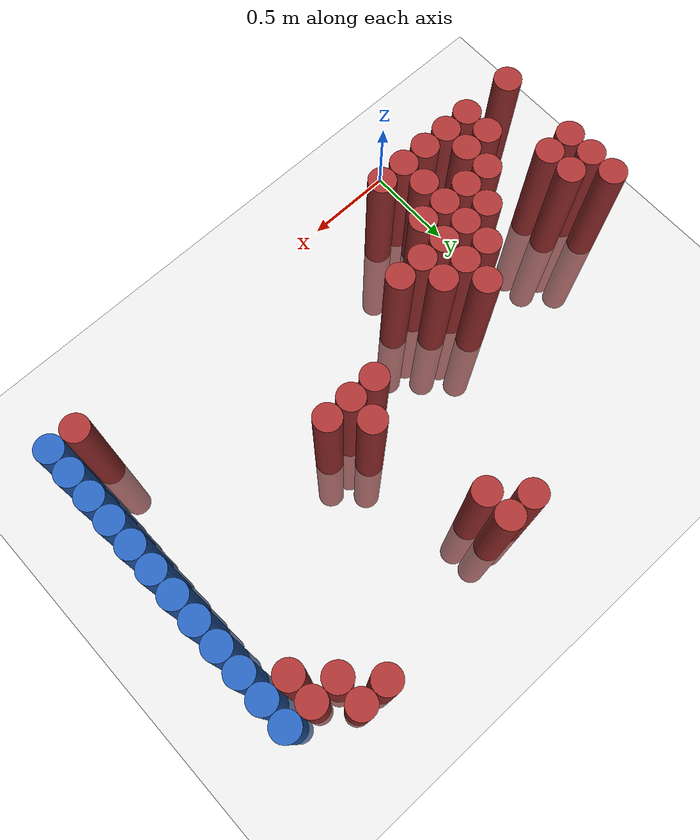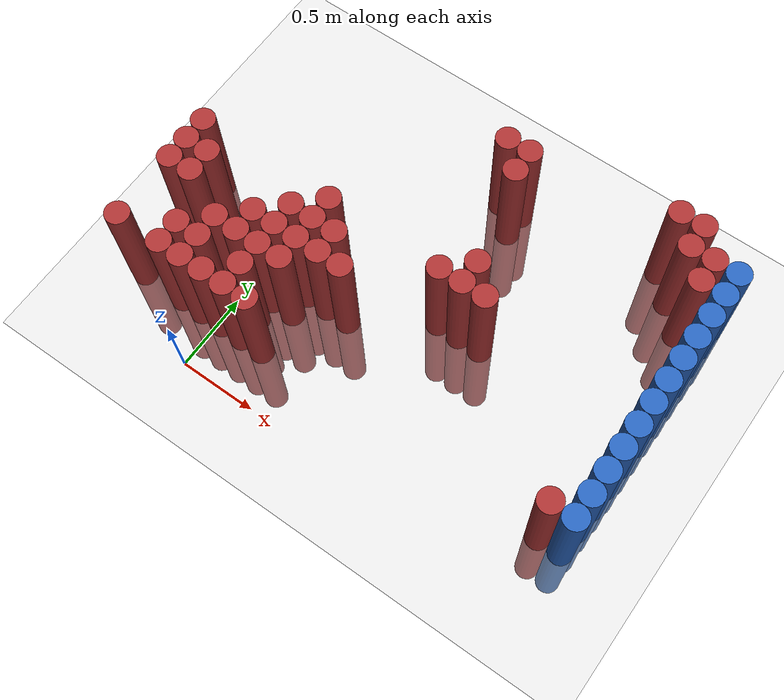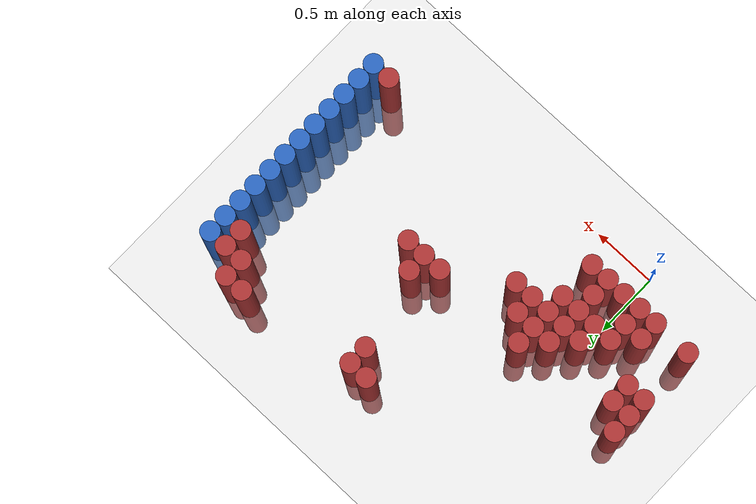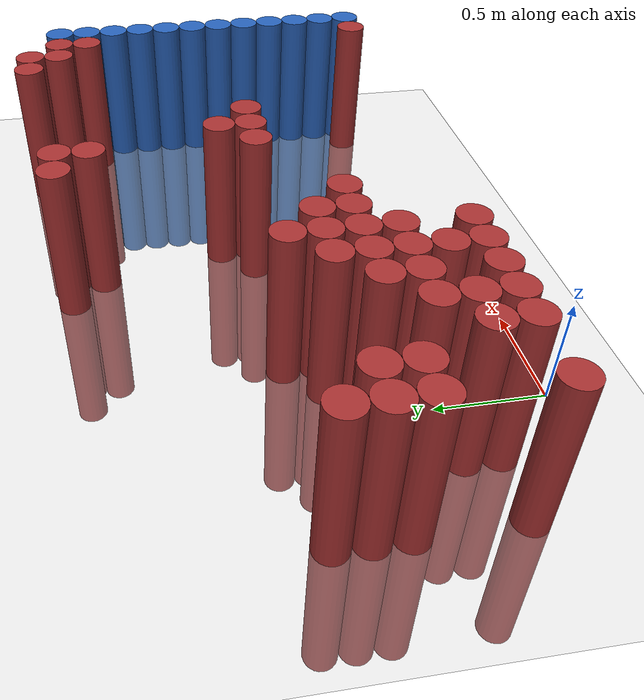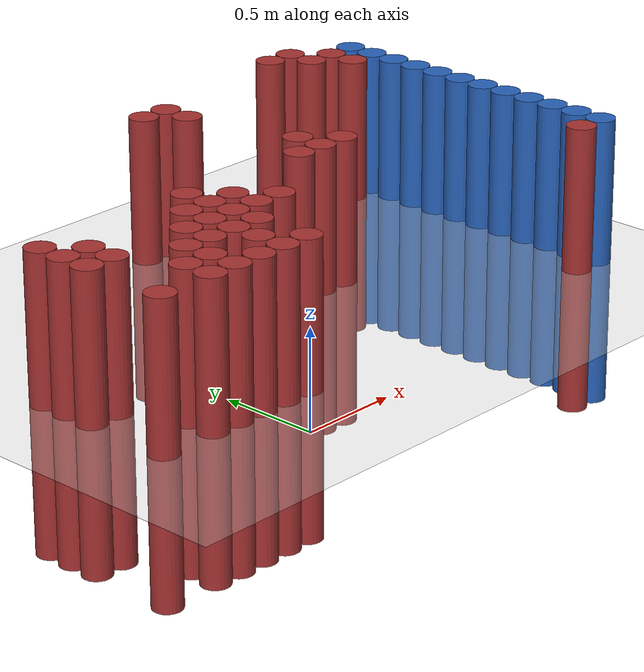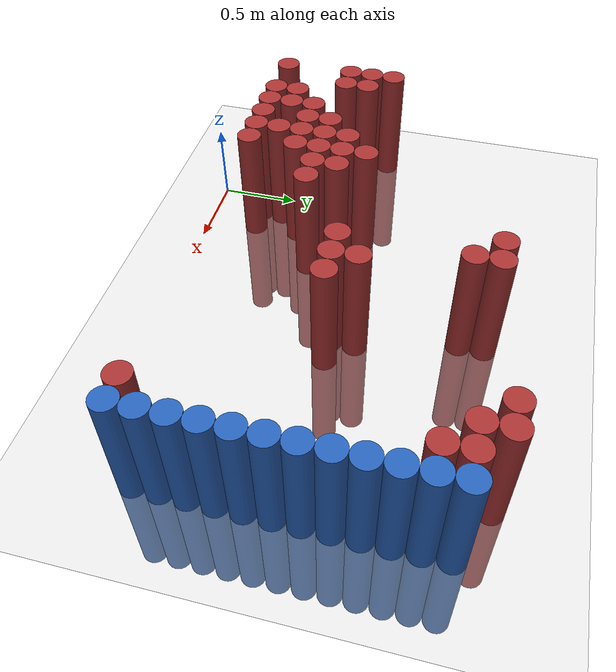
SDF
<sdf version="1.6">
 <world name="default">
  <model name="ground_plane">
   <static>1</static>
   <link name="link">
    <collision name="collision">
     <geometry><plane><normal>0 0 1</normal><size>100 100</size></plane></geometry>
     <surface><friction><ode><mu>100</mu><mu2>50</mu2></ode></friction></surface>
    </collision>
    <visual name="visual">
     <cast_shadows>0</cast_shadows>
     <geometry><plane><normal>0 0 1</normal><size>100 100</size></plane></geometry>
     <material>
      <script><uri>file://media/materials/scripts/gazebo.material</uri><name>Gazebo/Grey</name></script>
     </material>
    </visual>
   </link>
  </model>
  <model name="unit_cylinder_153">
   <static>1</static>
   <pose>-0.575000 0.325000 0.000000 0.000000 0.000000 0.000000</pose>
   <link name="link">
    <inertial>
     <mass>1</mass>
     <inertia><ixx>0.145833</ixx><ixy>0</ixy><ixz>0</ixz><iyy>0.145833</iyy><iyz>0</iyz><izz>0.125</izz></inertia>
    </inertial>
    <collision name="collision">
     <geometry><cylinder><radius>0.075000</radius><length>1.5</length></cylinder></geometry>
    </collision>
    <visual name="visual">
     <geometry><cylinder><radius>0.075000</radius><length>1.5</length></cylinder></geometry>
     <material>
      <ambient>0.648000 0.192000 0.192000 1</ambient>
      <diffuse>0.648000 0.192000 0.192000 1</diffuse>
     </material>
     <material>
      <script><name>Gazebo/Grey</name><uri>file://media/materials/scripts/gazebo.material</uri></script>
     </material>
    </visual>
   </link>
  </model>
  <model name="unit_cylinder_154">
   <static>1</static>
   <pose>-0.575000 0.775000 0.000000 0.000000 0.000000 0.000000</pose>
   <link name="link">
    <inertial>
     <mass>1</mass>
     <inertia><ixx>0.145833</ixx><ixy>0</ixy><ixz>0</ixz><iyy>0.145833</iyy><iyz>0</iyz><izz>0.125</izz></inertia>
    </inertial>
    <collision name="collision">
     <geometry><cylinder><radius>0.075000</radius><length>1.5</length></cylinder></geometry>
    </collision>
    <visual name="visual">
     <geometry><cylinder><radius>0.075000</radius><length>1.5</length></cylinder></geometry>
     <material>
      <ambient>0.648000 0.192000 0.192000 1</ambient>
      <diffuse>0.648000 0.192000 0.192000 1</diffuse>
     </material>
     <material>
      <script><name>Gazebo/Grey</name><uri>file://media/materials/scripts/gazebo.material</uri></script>
     </material>
    </visual>
   </link>
  </model>
  <model name="unit_cylinder_155">
   <static>1</static>
   <pose>-0.575000 0.925000 0.000000 0.000000 0.000000 0.000000</pose>
   <link name="link">
    <inertial>
     <mass>1</mass>
     <inertia><ixx>0.145833</ixx><ixy>0</ixy><ixz>0</ixz><iyy>0.145833</iyy><iyz>0</iyz><izz>0.125</izz></inertia>
    </inertial>
    <collision name="collision">
     <geometry><cylinder><radius>0.075000</radius><length>1.5</length></cylinder></geometry>
    </collision>
    <visual name="visual">
     <geometry><cylinder><radius>0.075000</radius><length>1.5</length></cylinder></geometry>
     <material>
      <ambient>0.648000 0.192000 0.192000 1</ambient>
      <diffuse>0.648000 0.192000 0.192000 1</diffuse>
     </material>
     <material>
      <script><name>Gazebo/Grey</name><uri>file://media/materials/scripts/gazebo.material</uri></script>
     </material>
    </visual>
   </link>
  </model>
  <model name="unit_cylinder_156">
   <static>1</static>
   <pose>-0.575000 1.075000 0.000000 0.000000 0.000000 0.000000</pose>
   <link name="link">
    <inertial>
     <mass>1</mass>
     <inertia><ixx>0.145833</ixx><ixy>0</ixy><ixz>0</ixz><iyy>0.145833</iyy><iyz>0</iyz><izz>0.125</izz></inertia>
    </inertial>
    <collision name="collision">
     <geometry><cylinder><radius>0.075000</radius><length>1.5</length></cylinder></geometry>
    </collision>
    <visual name="visual">
     <geometry><cylinder><radius>0.075000</radius><length>1.5</length></cylinder></geometry>
     <material>
      <ambient>0.648000 0.192000 0.192000 1</ambient>
      <diffuse>0.648000 0.192000 0.192000 1</diffuse>
     </material>
     <material>
      <script><name>Gazebo/Grey</name><uri>file://media/materials/scripts/gazebo.material</uri></script>
     </material>
    </visual>
   </link>
  </model>
  <model name="unit_cylinder_163">
   <static>1</static>
   <pose>-0.425000 0.775000 0.000000 0.000000 0.000000 0.000000</pose>
   <link name="link">
    <inertial>
     <mass>1</mass>
     <inertia><ixx>0.145833</ixx><ixy>0</ixy><ixz>0</ixz><iyy>0.145833</iyy><iyz>0</iyz><izz>0.125</izz></inertia>
    </inertial>
    <collision name="collision">
     <geometry><cylinder><radius>0.075000</radius><length>1.5</length></cylinder></geometry>
    </collision>
    <visual name="visual">
     <geometry><cylinder><radius>0.075000</radius><length>1.5</length></cylinder></geometry>
     <material>
      <ambient>0.648000 0.192000 0.192000 1</ambient>
      <diffuse>0.648000 0.192000 0.192000 1</diffuse>
     </material>
     <material>
      <script><name>Gazebo/Grey</name><uri>file://media/materials/scripts/gazebo.material</uri></script>
     </material>
    </visual>
   </link>
  </model>
  <model name="unit_cylinder_164">
   <static>1</static>
   <pose>-0.425000 0.925000 0.000000 0.000000 0.000000 0.000000</pose>
   <link name="link">
    <inertial>
     <mass>1</mass>
     <inertia><ixx>0.145833</ixx><ixy>0</ixy><ixz>0</ixz><iyy>0.145833</iyy><iyz>0</iyz><izz>0.125</izz></inertia>
    </inertial>
    <collision name="collision">
     <geometry><cylinder><radius>0.075000</radius><length>1.5</length></cylinder></geometry>
    </collision>
    <visual name="visual">
     <geometry><cylinder><radius>0.075000</radius><length>1.5</length></cylinder></geometry>
     <material>
      <ambient>0.648000 0.192000 0.192000 1</ambient>
      <diffuse>0.648000 0.192000 0.192000 1</diffuse>
     </material>
     <material>
      <script><name>Gazebo/Grey</name><uri>file://media/materials/scripts/gazebo.material</uri></script>
     </material>
    </visual>
   </link>
  </model>
  <model name="unit_cylinder_169">
   <static>1</static>
   <pose>-0.275000 0.325000 0.000000 0.000000 0.000000 0.000000</pose>
   <link name="link">
    <inertial>
     <mass>1</mass>
     <inertia><ixx>0.145833</ixx><ixy>0</ixy><ixz>0</ixz><iyy>0.145833</iyy><iyz>0</iyz><izz>0.125</izz></inertia>
    </inertial>
    <collision name="collision">
     <geometry><cylinder><radius>0.075000</radius><length>1.5</length></cylinder></geometry>
    </collision>
    <visual name="visual">
     <geometry><cylinder><radius>0.075000</radius><length>1.5</length></cylinder></geometry>
     <material>
      <ambient>0.648000 0.192000 0.192000 1</ambient>
      <diffuse>0.648000 0.192000 0.192000 1</diffuse>
     </material>
     <material>
      <script><name>Gazebo/Grey</name><uri>file://media/materials/scripts/gazebo.material</uri></script>
     </material>
    </visual>
   </link>
  </model>
  <model name="unit_cylinder_170">
   <static>1</static>
   <pose>-0.275000 0.475000 0.000000 0.000000 0.000000 0.000000</pose>
   <link name="link">
    <inertial>
     <mass>1</mass>
     <inertia><ixx>0.145833</ixx><ixy>0</ixy><ixz>0</ixz><iyy>0.145833</iyy><iyz>0</iyz><izz>0.125</izz></inertia>
    </inertial>
    <collision name="collision">
     <geometry><cylinder><radius>0.075000</radius><length>1.5</length></cylinder></geometry>
    </collision>
    <visual name="visual">
     <geometry><cylinder><radius>0.075000</radius><length>1.5</length></cylinder></geometry>
     <material>
      <ambient>0.648000 0.192000 0.192000 1</ambient>
      <diffuse>0.648000 0.192000 0.192000 1</diffuse>
     </material>
     <material>
      <script><name>Gazebo/Grey</name><uri>file://media/materials/scripts/gazebo.material</uri></script>
     </material>
    </visual>
   </link>
  </model>
  <model name="unit_cylinder_174">
   <static>1</static>
   <pose>-0.125000 0.325000 0.000000 0.000000 0.000000 0.000000</pose>
   <link name="link">
    <inertial>
     <mass>1</mass>
     <inertia><ixx>0.145833</ixx><ixy>0</ixy><ixz>0</ixz><iyy>0.145833</iyy><iyz>0</iyz><izz>0.125</izz></inertia>
    </inertial>
    <collision name="collision">
     <geometry><cylinder><radius>0.075000</radius><length>1.5</length></cylinder></geometry>
    </collision>
    <visual name="visual">
     <geometry><cylinder><radius>0.075000</radius><length>1.5</length></cylinder></geometry>
     <material>
      <ambient>0.648000 0.192000 0.192000 1</ambient>
      <diffuse>0.648000 0.192000 0.192000 1</diffuse>
     </material>
     <material>
      <script><name>Gazebo/Grey</name><uri>file://media/materials/scripts/gazebo.material</uri></script>
     </material>
    </visual>
   </link>
  </model>
  <model name="unit_cylinder_175">
   <static>1</static>
   <pose>-0.125000 0.475000 0.000000 0.000000 0.000000 0.000000</pose>
   <link name="link">
    <inertial>
     <mass>1</mass>
     <inertia><ixx>0.145833</ixx><ixy>0</ixy><ixz>0</ixz><iyy>0.145833</iyy><iyz>0</iyz><izz>0.125</izz></inertia>
    </inertial>
    <collision name="collision">
     <geometry><cylinder><radius>0.075000</radius><length>1.5</length></cylinder></geometry>
    </collision>
    <visual name="visual">
     <geometry><cylinder><radius>0.075000</radius><length>1.5</length></cylinder></geometry>
     <material>
      <ambient>0.648000 0.192000 0.192000 1</ambient>
      <diffuse>0.648000 0.192000 0.192000 1</diffuse>
     </material>
     <material>
      <script><name>Gazebo/Grey</name><uri>file://media/materials/scripts/gazebo.material</uri></script>
     </material>
    </visual>
   </link>
  </model>
  <model name="unit_cylinder_176">
   <static>1</static>
   <pose>-0.125000 0.625000 0.000000 0.000000 0.000000 0.000000</pose>
   <link name="link">
    <inertial>
     <mass>1</mass>
     <inertia><ixx>0.145833</ixx><ixy>0</ixy><ixz>0</ixz><iyy>0.145833</iyy><iyz>0</iyz><izz>0.125</izz></inertia>
    </inertial>
    <collision name="collision">
     <geometry><cylinder><radius>0.075000</radius><length>1.5</length></cylinder></geometry>
    </collision>
    <visual name="visual">
     <geometry><cylinder><radius>0.075000</radius><length>1.5</length></cylinder></geometry>
     <material>
      <ambient>0.648000 0.192000 0.192000 1</ambient>
      <diffuse>0.648000 0.192000 0.192000 1</diffuse>
     </material>
     <material>
      <script><name>Gazebo/Grey</name><uri>file://media/materials/scripts/gazebo.material</uri></script>
     </material>
    </visual>
   </link>
  </model>
  <model name="unit_cylinder_179">
   <static>1</static>
   <pose>0.025000 0.325000 0.000000 0.000000 0.000000 0.000000</pose>
   <link name="link">
    <inertial>
     <mass>1</mass>
     <inertia><ixx>0.145833</ixx><ixy>0</ixy><ixz>0</ixz><iyy>0.145833</iyy><iyz>0</iyz><izz>0.125</izz></inertia>
    </inertial>
    <collision name="collision">
     <geometry><cylinder><radius>0.075000</radius><length>1.5</length></cylinder></geometry>
    </collision>
    <visual name="visual">
     <geometry><cylinder><radius>0.075000</radius><length>1.5</length></cylinder></geometry>
     <material>
      <ambient>0.648000 0.192000 0.192000 1</ambient>
      <diffuse>0.648000 0.192000 0.192000 1</diffuse>
     </material>
     <material>
      <script><name>Gazebo/Grey</name><uri>file://media/materials/scripts/gazebo.material</uri></script>
     </material>
    </visual>
   </link>
  </model>
  <model name="unit_cylinder_180">
   <static>1</static>
   <pose>0.025000 0.625000 0.000000 0.000000 0.000000 0.000000</pose>
   <link name="link">
    <inertial>
     <mass>1</mass>
     <inertia><ixx>0.145833</ixx><ixy>0</ixy><ixz>0</ixz><iyy>0.145833</iyy><iyz>0</iyz><izz>0.125</izz></inertia>
    </inertial>
    <collision name="collision">
     <geometry><cylinder><radius>0.075000</radius><length>1.5</length></cylinder></geometry>
    </collision>
    <visual name="visual">
     <geometry><cylinder><radius>0.075000</radius><length>1.5</length></cylinder></geometry>
     <material>
      <ambient>0.648000 0.192000 0.192000 1</ambient>
      <diffuse>0.648000 0.192000 0.192000 1</diffuse>
     </material>
     <material>
      <script><name>Gazebo/Grey</name><uri>file://media/materials/scripts/gazebo.material</uri></script>
     </material>
    </visual>
   </link>
  </model>
  <model name="unit_cylinder_181">
   <static>1</static>
   <pose>0.025000 0.775000 0.000000 0.000000 0.000000 0.000000</pose>
   <link name="link">
    <inertial>
     <mass>1</mass>
     <inertia><ixx>0.145833</ixx><ixy>0</ixy><ixz>0</ixz><iyy>0.145833</iyy><iyz>0</iyz><izz>0.125</izz></inertia>
    </inertial>
    <collision name="collision">
     <geometry><cylinder><radius>0.075000</radius><length>1.5</length></cylinder></geometry>
    </collision>
    <visual name="visual">
     <geometry><cylinder><radius>0.075000</radius><length>1.5</length></cylinder></geometry>
     <material>
      <ambient>0.648000 0.192000 0.192000 1</ambient>
      <diffuse>0.648000 0.192000 0.192000 1</diffuse>
     </material>
     <material>
      <script><name>Gazebo/Grey</name><uri>file://media/materials/scripts/gazebo.material</uri></script>
     </material>
    </visual>
   </link>
  </model>
  <model name="unit_cylinder_183">
   <static>1</static>
   <pose>0.175000 0.325000 0.000000 0.000000 0.000000 0.000000</pose>
   <link name="link">
    <inertial>
     <mass>1</mass>
     <inertia><ixx>0.145833</ixx><ixy>0</ixy><ixz>0</ixz><iyy>0.145833</iyy><iyz>0</iyz><izz>0.125</izz></inertia>
    </inertial>
    <collision name="collision">
     <geometry><cylinder><radius>0.075000</radius><length>1.5</length></cylinder></geometry>
    </collision>
    <visual name="visual">
     <geometry><cylinder><radius>0.075000</radius><length>1.5</length></cylinder></geometry>
     <material>
      <ambient>0.648000 0.192000 0.192000 1</ambient>
      <diffuse>0.648000 0.192000 0.192000 1</diffuse>
     </material>
     <material>
      <script><name>Gazebo/Grey</name><uri>file://media/materials/scripts/gazebo.material</uri></script>
     </material>
    </visual>
   </link>
  </model>
  <model name="unit_cylinder_184">
   <static>1</static>
   <pose>0.175000 0.475000 0.000000 0.000000 0.000000 0.000000</pose>
   <link name="link">
    <inertial>
     <mass>1</mass>
     <inertia><ixx>0.145833</ixx><ixy>0</ixy><ixz>0</ixz><iyy>0.145833</iyy><iyz>0</iyz><izz>0.125</izz></inertia>
    </inertial>
    <collision name="collision">
     <geometry><cylinder><radius>0.075000</radius><length>1.5</length></cylinder></geometry>
    </collision>
    <visual name="visual">
     <geometry><cylinder><radius>0.075000</radius><length>1.5</length></cylinder></geometry>
     <material>
      <ambient>0.648000 0.192000 0.192000 1</ambient>
      <diffuse>0.648000 0.192000 0.192000 1</diffuse>
     </material>
     <material>
      <script><name>Gazebo/Grey</name><uri>file://media/materials/scripts/gazebo.material</uri></script>
     </material>
    </visual>
   </link>
  </model>
  <model name="unit_cylinder_185">
   <static>1</static>
   <pose>0.175000 0.625000 0.000000 0.000000 0.000000 0.000000</pose>
   <link name="link">
    <inertial>
     <mass>1</mass>
     <inertia><ixx>0.145833</ixx><ixy>0</ixy><ixz>0</ixz><iyy>0.145833</iyy><iyz>0</iyz><izz>0.125</izz></inertia>
    </inertial>
    <collision name="collision">
     <geometry><cylinder><radius>0.075000</radius><length>1.5</length></cylinder></geometry>
    </collision>
    <visual name="visual">
     <geometry><cylinder><radius>0.075000</radius><length>1.5</length></cylinder></geometry>
     <material>
      <ambient>0.648000 0.192000 0.192000 1</ambient>
      <diffuse>0.648000 0.192000 0.192000 1</diffuse>
     </material>
     <material>
      <script><name>Gazebo/Grey</name><uri>file://media/materials/scripts/gazebo.material</uri></script>
     </material>
    </visual>
   </link>
  </model>
  <model name="unit_cylinder_186">
   <static>1</static>
   <pose>0.175000 0.775000 0.000000 0.000000 0.000000 0.000000</pose>
   <link name="link">
    <inertial>
     <mass>1</mass>
     <inertia><ixx>0.145833</ixx><ixy>0</ixy><ixz>0</ixz><iyy>0.145833</iyy><iyz>0</iyz><izz>0.125</izz></inertia>
    </inertial>
    <collision name="collision">
     <geometry><cylinder><radius>0.075000</radius><length>1.5</length></cylinder></geometry>
    </collision>
    <visual name="visual">
     <geometry><cylinder><radius>0.075000</radius><length>1.5</length></cylinder></geometry>
     <material>
      <ambient>0.648000 0.192000 0.192000 1</ambient>
      <diffuse>0.648000 0.192000 0.192000 1</diffuse>
     </material>
     <material>
      <script><name>Gazebo/Grey</name><uri>file://media/materials/scripts/gazebo.material</uri></script>
     </material>
    </visual>
   </link>
  </model>
  <model name="unit_cylinder_187">
   <static>1</static>
   <pose>0.175000 0.925000 0.000000 0.000000 0.000000 0.000000</pose>
   <link name="link">
    <inertial>
     <mass>1</mass>
     <inertia><ixx>0.145833</ixx><ixy>0</ixy><ixz>0</ixz><iyy>0.145833</iyy><iyz>0</iyz><izz>0.125</izz></inertia>
    </inertial>
    <collision name="collision">
     <geometry><cylinder><radius>0.075000</radius><length>1.5</length></cylinder></geometry>
    </collision>
    <visual name="visual">
     <geometry><cylinder><radius>0.075000</radius><length>1.5</length></cylinder></geometry>
     <material>
      <ambient>0.648000 0.192000 0.192000 1</ambient>
      <diffuse>0.648000 0.192000 0.192000 1</diffuse>
     </material>
     <material>
      <script><name>Gazebo/Grey</name><uri>file://media/materials/scripts/gazebo.material</uri></script>
     </material>
    </visual>
   </link>
  </model>
  <model name="unit_cylinder_189">
   <static>1</static>
   <pose>0.325000 0.325000 0.000000 0.000000 0.000000 0.000000</pose>
   <link name="link">
    <inertial>
     <mass>1</mass>
     <inertia><ixx>0.145833</ixx><ixy>0</ixy><ixz>0</ixz><iyy>0.145833</iyy><iyz>0</iyz><izz>0.125</izz></inertia>
    </inertial>
    <collision name="collision">
     <geometry><cylinder><radius>0.075000</radius><length>1.5</length></cylinder></geometry>
    </collision>
    <visual name="visual">
     <geometry><cylinder><radius>0.075000</radius><length>1.5</length></cylinder></geometry>
     <material>
      <ambient>0.648000 0.192000 0.192000 1</ambient>
      <diffuse>0.648000 0.192000 0.192000 1</diffuse>
     </material>
     <material>
      <script><name>Gazebo/Grey</name><uri>file://media/materials/scripts/gazebo.material</uri></script>
     </material>
    </visual>
   </link>
  </model>
  <model name="unit_cylinder_190">
   <static>1</static>
   <pose>0.325000 0.625000 0.000000 0.000000 0.000000 0.000000</pose>
   <link name="link">
    <inertial>
     <mass>1</mass>
     <inertia><ixx>0.145833</ixx><ixy>0</ixy><ixz>0</ixz><iyy>0.145833</iyy><iyz>0</iyz><izz>0.125</izz></inertia>
    </inertial>
    <collision name="collision">
     <geometry><cylinder><radius>0.075000</radius><length>1.5</length></cylinder></geometry>
    </collision>
    <visual name="visual">
     <geometry><cylinder><radius>0.075000</radius><length>1.5</length></cylinder></geometry>
     <material>
      <ambient>0.648000 0.192000 0.192000 1</ambient>
      <diffuse>0.648000 0.192000 0.192000 1</diffuse>
     </material>
     <material>
      <script><name>Gazebo/Grey</name><uri>file://media/materials/scripts/gazebo.material</uri></script>
     </material>
    </visual>
   </link>
  </model>
  <model name="unit_cylinder_191">
   <static>1</static>
   <pose>0.325000 0.775000 0.000000 0.000000 0.000000 0.000000</pose>
   <link name="link">
    <inertial>
     <mass>1</mass>
     <inertia><ixx>0.145833</ixx><ixy>0</ixy><ixz>0</ixz><iyy>0.145833</iyy><iyz>0</iyz><izz>0.125</izz></inertia>
    </inertial>
    <collision name="collision">
     <geometry><cylinder><radius>0.075000</radius><length>1.5</length></cylinder></geometry>
    </collision>
    <visual name="visual">
     <geometry><cylinder><radius>0.075000</radius><length>1.5</length></cylinder></geometry>
     <material>
      <ambient>0.648000 0.192000 0.192000 1</ambient>
      <diffuse>0.648000 0.192000 0.192000 1</diffuse>
     </material>
     <material>
      <script><name>Gazebo/Grey</name><uri>file://media/materials/scripts/gazebo.material</uri></script>
     </material>
    </visual>
   </link>
  </model>
  <model name="unit_cylinder_192">
   <static>1</static>
   <pose>0.325000 0.925000 0.000000 0.000000 0.000000 0.000000</pose>
   <link name="link">
    <inertial>
     <mass>1</mass>
     <inertia><ixx>0.145833</ixx><ixy>0</ixy><ixz>0</ixz><iyy>0.145833</iyy><iyz>0</iyz><izz>0.125</izz></inertia>
    </inertial>
    <collision name="collision">
     <geometry><cylinder><radius>0.075000</radius><length>1.5</length></cylinder></geometry>
    </collision>
    <visual name="visual">
     <geometry><cylinder><radius>0.075000</radius><length>1.5</length></cylinder></geometry>
     <material>
      <ambient>0.648000 0.192000 0.192000 1</ambient>
      <diffuse>0.648000 0.192000 0.192000 1</diffuse>
     </material>
     <material>
      <script><name>Gazebo/Grey</name><uri>file://media/materials/scripts/gazebo.material</uri></script>
     </material>
    </visual>
   </link>
  </model>
  <model name="unit_cylinder_193">
   <static>1</static>
   <pose>0.325000 1.075000 0.000000 0.000000 0.000000 0.000000</pose>
   <link name="link">
    <inertial>
     <mass>1</mass>
     <inertia><ixx>0.145833</ixx><ixy>0</ixy><ixz>0</ixz><iyy>0.145833</iyy><iyz>0</iyz><izz>0.125</izz></inertia>
    </inertial>
    <collision name="collision">
     <geometry><cylinder><radius>0.075000</radius><length>1.5</length></cylinder></geometry>
    </collision>
    <visual name="visual">
     <geometry><cylinder><radius>0.075000</radius><length>1.5</length></cylinder></geometry>
     <material>
      <ambient>0.648000 0.192000 0.192000 1</ambient>
      <diffuse>0.648000 0.192000 0.192000 1</diffuse>
     </material>
     <material>
      <script><name>Gazebo/Grey</name><uri>file://media/materials/scripts/gazebo.material</uri></script>
     </material>
    </visual>
   </link>
  </model>
  <model name="unit_cylinder_194">
   <static>1</static>
   <pose>0.475000 0.775000 0.000000 0.000000 0.000000 0.000000</pose>
   <link name="link">
    <inertial>
     <mass>1</mass>
     <inertia><ixx>0.145833</ixx><ixy>0</ixy><ixz>0</ixz><iyy>0.145833</iyy><iyz>0</iyz><izz>0.125</izz></inertia>
    </inertial>
    <collision name="collision">
     <geometry><cylinder><radius>0.075000</radius><length>1.5</length></cylinder></geometry>
    </collision>
    <visual name="visual">
     <geometry><cylinder><radius>0.075000</radius><length>1.5</length></cylinder></geometry>
     <material>
      <ambient>0.648000 0.192000 0.192000 1</ambient>
      <diffuse>0.648000 0.192000 0.192000 1</diffuse>
     </material>
     <material>
      <script><name>Gazebo/Grey</name><uri>file://media/materials/scripts/gazebo.material</uri></script>
     </material>
    </visual>
   </link>
  </model>
  <model name="unit_cylinder_195">
   <static>1</static>
   <pose>0.475000 0.925000 0.000000 0.000000 0.000000 0.000000</pose>
   <link name="link">
    <inertial>
     <mass>1</mass>
     <inertia><ixx>0.145833</ixx><ixy>0</ixy><ixz>0</ixz><iyy>0.145833</iyy><iyz>0</iyz><izz>0.125</izz></inertia>
    </inertial>
    <collision name="collision">
     <geometry><cylinder><radius>0.075000</radius><length>1.5</length></cylinder></geometry>
    </collision>
    <visual name="visual">
     <geometry><cylinder><radius>0.075000</radius><length>1.5</length></cylinder></geometry>
     <material>
      <ambient>0.648000 0.192000 0.192000 1</ambient>
      <diffuse>0.648000 0.192000 0.192000 1</diffuse>
     </material>
     <material>
      <script><name>Gazebo/Grey</name><uri>file://media/materials/scripts/gazebo.material</uri></script>
     </material>
    </visual>
   </link>
  </model>
  <model name="unit_cylinder_196">
   <static>1</static>
   <pose>0.625000 0.775000 0.000000 0.000000 0.000000 0.000000</pose>
   <link name="link">
    <inertial>
     <mass>1</mass>
     <inertia><ixx>0.145833</ixx><ixy>0</ixy><ixz>0</ixz><iyy>0.145833</iyy><iyz>0</iyz><izz>0.125</izz></inertia>
    </inertial>
    <collision name="collision">
     <geometry><cylinder><radius>0.075000</radius><length>1.5</length></cylinder></geometry>
    </collision>
    <visual name="visual">
     <geometry><cylinder><radius>0.075000</radius><length>1.5</length></cylinder></geometry>
     <material>
      <ambient>0.648000 0.192000 0.192000 1</ambient>
      <diffuse>0.648000 0.192000 0.192000 1</diffuse>
     </material>
     <material>
      <script><name>Gazebo/Grey</name><uri>file://media/materials/scripts/gazebo.material</uri></script>
     </material>
    </visual>
   </link>
  </model>
  <model name="unit_cylinder_197">
   <static>1</static>
   <pose>0.925000 1.975000 0.000000 0.000000 0.000000 0.000000</pose>
   <link name="link">
    <inertial>
     <mass>1</mass>
     <inertia><ixx>0.145833</ixx><ixy>0</ixy><ixz>0</ixz><iyy>0.145833</iyy><iyz>0</iyz><izz>0.125</izz></inertia>
    </inertial>
    <collision name="collision">
     <geometry><cylinder><radius>0.075000</radius><length>1.5</length></cylinder></geometry>
    </collision>
    <visual name="visual">
     <geometry><cylinder><radius>0.075000</radius><length>1.5</length></cylinder></geometry>
     <material>
      <ambient>0.648000 0.192000 0.192000 1</ambient>
      <diffuse>0.648000 0.192000 0.192000 1</diffuse>
     </material>
     <material>
      <script><name>Gazebo/Grey</name><uri>file://media/materials/scripts/gazebo.material</uri></script>
     </material>
    </visual>
   </link>
  </model>
  <model name="unit_cylinder_198">
   <static>1</static>
   <pose>1.075000 1.075000 0.000000 0.000000 0.000000 0.000000</pose>
   <link name="link">
    <inertial>
     <mass>1</mass>
     <inertia><ixx>0.145833</ixx><ixy>0</ixy><ixz>0</ixz><iyy>0.145833</iyy><iyz>0</iyz><izz>0.125</izz></inertia>
    </inertial>
    <collision name="collision">
     <geometry><cylinder><radius>0.075000</radius><length>1.5</length></cylinder></geometry>
    </collision>
    <visual name="visual">
     <geometry><cylinder><radius>0.075000</radius><length>1.5</length></cylinder></geometry>
     <material>
      <ambient>0.648000 0.192000 0.192000 1</ambient>
      <diffuse>0.648000 0.192000 0.192000 1</diffuse>
     </material>
     <material>
      <script><name>Gazebo/Grey</name><uri>file://media/materials/scripts/gazebo.material</uri></script>
     </material>
    </visual>
   </link>
  </model>
  <model name="unit_cylinder_199">
   <static>1</static>
   <pose>1.075000 1.825000 0.000000 0.000000 0.000000 0.000000</pose>
   <link name="link">
    <inertial>
     <mass>1</mass>
     <inertia><ixx>0.145833</ixx><ixy>0</ixy><ixz>0</ixz><iyy>0.145833</iyy><iyz>0</iyz><izz>0.125</izz></inertia>
    </inertial>
    <collision name="collision">
     <geometry><cylinder><radius>0.075000</radius><length>1.5</length></cylinder></geometry>
    </collision>
    <visual name="visual">
     <geometry><cylinder><radius>0.075000</radius><length>1.5</length></cylinder></geometry>
     <material>
      <ambient>0.648000 0.192000 0.192000 1</ambient>
      <diffuse>0.648000 0.192000 0.192000 1</diffuse>
     </material>
     <material>
      <script><name>Gazebo/Grey</name><uri>file://media/materials/scripts/gazebo.material</uri></script>
     </material>
    </visual>
   </link>
  </model>
  <model name="unit_cylinder_200">
   <static>1</static>
   <pose>1.075000 1.975000 0.000000 0.000000 0.000000 0.000000</pose>
   <link name="link">
    <inertial>
     <mass>1</mass>
     <inertia><ixx>0.145833</ixx><ixy>0</ixy><ixz>0</ixz><iyy>0.145833</iyy><iyz>0</iyz><izz>0.125</izz></inertia>
    </inertial>
    <collision name="collision">
     <geometry><cylinder><radius>0.075000</radius><length>1.5</length></cylinder></geometry>
    </collision>
    <visual name="visual">
     <geometry><cylinder><radius>0.075000</radius><length>1.5</length></cylinder></geometry>
     <material>
      <ambient>0.648000 0.192000 0.192000 1</ambient>
      <diffuse>0.648000 0.192000 0.192000 1</diffuse>
     </material>
     <material>
      <script><name>Gazebo/Grey</name><uri>file://media/materials/scripts/gazebo.material</uri></script>
     </material>
    </visual>
   </link>
  </model>
  <model name="unit_cylinder_201">
   <static>1</static>
   <pose>1.225000 1.075000 0.000000 0.000000 0.000000 0.000000</pose>
   <link name="link">
    <inertial>
     <mass>1</mass>
     <inertia><ixx>0.145833</ixx><ixy>0</ixy><ixz>0</ixz><iyy>0.145833</iyy><iyz>0</iyz><izz>0.125</izz></inertia>
    </inertial>
    <collision name="collision">
     <geometry><cylinder><radius>0.075000</radius><length>1.5</length></cylinder></geometry>
    </collision>
    <visual name="visual">
     <geometry><cylinder><radius>0.075000</radius><length>1.5</length></cylinder></geometry>
     <material>
      <ambient>0.648000 0.192000 0.192000 1</ambient>
      <diffuse>0.648000 0.192000 0.192000 1</diffuse>
     </material>
     <material>
      <script><name>Gazebo/Grey</name><uri>file://media/materials/scripts/gazebo.material</uri></script>
     </material>
    </visual>
   </link>
  </model>
  <model name="unit_cylinder_202">
   <static>1</static>
   <pose>1.225000 1.225000 0.000000 0.000000 0.000000 0.000000</pose>
   <link name="link">
    <inertial>
     <mass>1</mass>
     <inertia><ixx>0.145833</ixx><ixy>0</ixy><ixz>0</ixz><iyy>0.145833</iyy><iyz>0</iyz><izz>0.125</izz></inertia>
    </inertial>
    <collision name="collision">
     <geometry><cylinder><radius>0.075000</radius><length>1.5</length></cylinder></geometry>
    </collision>
    <visual name="visual">
     <geometry><cylinder><radius>0.075000</radius><length>1.5</length></cylinder></geometry>
     <material>
      <ambient>0.648000 0.192000 0.192000 1</ambient>
      <diffuse>0.648000 0.192000 0.192000 1</diffuse>
     </material>
     <material>
      <script><name>Gazebo/Grey</name><uri>file://media/materials/scripts/gazebo.material</uri></script>
     </material>
    </visual>
   </link>
  </model>
  <model name="unit_cylinder_204">
   <static>1</static>
   <pose>1.375000 1.075000 0.000000 0.000000 0.000000 0.000000</pose>
   <link name="link">
    <inertial>
     <mass>1</mass>
     <inertia><ixx>0.145833</ixx><ixy>0</ixy><ixz>0</ixz><iyy>0.145833</iyy><iyz>0</iyz><izz>0.125</izz></inertia>
    </inertial>
    <collision name="collision">
     <geometry><cylinder><radius>0.075000</radius><length>1.5</length></cylinder></geometry>
    </collision>
    <visual name="visual">
     <geometry><cylinder><radius>0.075000</radius><length>1.5</length></cylinder></geometry>
     <material>
      <ambient>0.648000 0.192000 0.192000 1</ambient>
      <diffuse>0.648000 0.192000 0.192000 1</diffuse>
     </material>
     <material>
      <script><name>Gazebo/Grey</name><uri>file://media/materials/scripts/gazebo.material</uri></script>
     </material>
    </visual>
   </link>
  </model>
  <model name="unit_cylinder_208">
   <static>1</static>
   <pose>1.975000 2.125000 0.000000 0.000000 0.000000 0.000000</pose>
   <link name="link">
    <inertial>
     <mass>1</mass>
     <inertia><ixx>0.145833</ixx><ixy>0</ixy><ixz>0</ixz><iyy>0.145833</iyy><iyz>0</iyz><izz>0.125</izz></inertia>
    </inertial>
    <collision name="collision">
     <geometry><cylinder><radius>0.075000</radius><length>1.5</length></cylinder></geometry>
    </collision>
    <visual name="visual">
     <geometry><cylinder><radius>0.075000</radius><length>1.5</length></cylinder></geometry>
     <material>
      <ambient>0.648000 0.192000 0.192000 1</ambient>
      <diffuse>0.648000 0.192000 0.192000 1</diffuse>
     </material>
     <material>
      <script><name>Gazebo/Grey</name><uri>file://media/materials/scripts/gazebo.material</uri></script>
     </material>
    </visual>
   </link>
  </model>
  <model name="unit_cylinder_211">
   <static>1</static>
   <pose>2.125000 1.975000 0.000000 0.000000 0.000000 0.000000</pose>
   <link name="link">
    <inertial>
     <mass>1</mass>
     <inertia><ixx>0.145833</ixx><ixy>0</ixy><ixz>0</ixz><iyy>0.145833</iyy><iyz>0</iyz><izz>0.125</izz></inertia>
    </inertial>
    <collision name="collision">
     <geometry><cylinder><radius>0.075000</radius><length>1.5</length></cylinder></geometry>
    </collision>
    <visual name="visual">
     <geometry><cylinder><radius>0.075000</radius><length>1.5</length></cylinder></geometry>
     <material>
      <ambient>0.648000 0.192000 0.192000 1</ambient>
      <diffuse>0.648000 0.192000 0.192000 1</diffuse>
     </material>
     <material>
      <script><name>Gazebo/Grey</name><uri>file://media/materials/scripts/gazebo.material</uri></script>
     </material>
    </visual>
   </link>
  </model>
  <model name="unit_cylinder_212">
   <static>1</static>
   <pose>2.125000 2.125000 0.000000 0.000000 0.000000 0.000000</pose>
   <link name="link">
    <inertial>
     <mass>1</mass>
     <inertia><ixx>0.145833</ixx><ixy>0</ixy><ixz>0</ixz><iyy>0.145833</iyy><iyz>0</iyz><izz>0.125</izz></inertia>
    </inertial>
    <collision name="collision">
     <geometry><cylinder><radius>0.075000</radius><length>1.5</length></cylinder></geometry>
    </collision>
    <visual name="visual">
     <geometry><cylinder><radius>0.075000</radius><length>1.5</length></cylinder></geometry>
     <material>
      <ambient>0.648000 0.192000 0.192000 1</ambient>
      <diffuse>0.648000 0.192000 0.192000 1</diffuse>
     </material>
     <material>
      <script><name>Gazebo/Grey</name><uri>file://media/materials/scripts/gazebo.material</uri></script>
     </material>
    </visual>
   </link>
  </model>
  <model name="unit_cylinder_216">
   <static>1</static>
   <pose>2.275000 0.325000 0.000000 0.000000 0.000000 0.000000</pose>
   <link name="link">
    <inertial>
     <mass>1</mass>
     <inertia><ixx>0.145833</ixx><ixy>0</ixy><ixz>0</ixz><iyy>0.145833</iyy><iyz>0</iyz><izz>0.125</izz></inertia>
    </inertial>
    <collision name="collision">
     <geometry><cylinder><radius>0.075000</radius><length>1.5</length></cylinder></geometry>
    </collision>
    <visual name="visual">
     <geometry><cylinder><radius>0.075000</radius><length>1.5</length></cylinder></geometry>
     <material>
      <ambient>0.648000 0.192000 0.192000 1</ambient>
      <diffuse>0.648000 0.192000 0.192000 1</diffuse>
     </material>
     <material>
      <script><name>Gazebo/Grey</name><uri>file://media/materials/scripts/gazebo.material</uri></script>
     </material>
    </visual>
   </link>
  </model>
  <model name="unit_cylinder_217">
   <static>1</static>
   <pose>2.275000 1.825000 0.000000 0.000000 0.000000 0.000000</pose>
   <link name="link">
    <inertial>
     <mass>1</mass>
     <inertia><ixx>0.145833</ixx><ixy>0</ixy><ixz>0</ixz><iyy>0.145833</iyy><iyz>0</iyz><izz>0.125</izz></inertia>
    </inertial>
    <collision name="collision">
     <geometry><cylinder><radius>0.075000</radius><length>1.5</length></cylinder></geometry>
    </collision>
    <visual name="visual">
     <geometry><cylinder><radius>0.075000</radius><length>1.5</length></cylinder></geometry>
     <material>
      <ambient>0.648000 0.192000 0.192000 1</ambient>
      <diffuse>0.648000 0.192000 0.192000 1</diffuse>
     </material>
     <material>
      <script><name>Gazebo/Grey</name><uri>file://media/materials/scripts/gazebo.material</uri></script>
     </material>
    </visual>
   </link>
  </model>
  <model name="unit_cylinder_218">
   <static>1</static>
   <pose>2.275000 1.975000 0.000000 0.000000 0.000000 0.000000</pose>
   <link name="link">
    <inertial>
     <mass>1</mass>
     <inertia><ixx>0.145833</ixx><ixy>0</ixy><ixz>0</ixz><iyy>0.145833</iyy><iyz>0</iyz><izz>0.125</izz></inertia>
    </inertial>
    <collision name="collision">
     <geometry><cylinder><radius>0.075000</radius><length>1.5</length></cylinder></geometry>
    </collision>
    <visual name="visual">
     <geometry><cylinder><radius>0.075000</radius><length>1.5</length></cylinder></geometry>
     <material>
      <ambient>0.648000 0.192000 0.192000 1</ambient>
      <diffuse>0.648000 0.192000 0.192000 1</diffuse>
     </material>
     <material>
      <script><name>Gazebo/Grey</name><uri>file://media/materials/scripts/gazebo.material</uri></script>
     </material>
    </visual>
   </link>
  </model>
  <model name="unit_cylinder_229">
   <static>1</static>
   <pose>2.425000 0.325000 0.000000 0.000000 0.000000 0.000000</pose>
   <link name="link">
    <inertial>
     <mass>1</mass>
     <inertia><ixx>0.145833</ixx><ixy>0</ixy><ixz>0</ixz><iyy>0.145833</iyy><iyz>0</iyz><izz>0.125</izz></inertia>
    </inertial>
    <collision name="collision">
     <geometry><cylinder><radius>0.075000</radius><length>1.5</length></cylinder></geometry>
    </collision>
    <visual name="visual">
     <geometry><cylinder><radius>0.075000</radius><length>1.5</length></cylinder></geometry>
     <material>
      <ambient>0.152000 0.379000 0.720000 1</ambient>
      <diffuse>0.152000 0.379000 0.720000 1</diffuse>
     </material>
     <material>
      <script><name>Gazebo/Grey</name><uri>file://media/materials/scripts/gazebo.material</uri></script>
     </material>
    </visual>
   </link>
  </model>
  <model name="unit_cylinder_230">
   <static>1</static>
   <pose>2.425000 0.475000 0.000000 0.000000 0.000000 0.000000</pose>
   <link name="link">
    <inertial>
     <mass>1</mass>
     <inertia><ixx>0.145833</ixx><ixy>0</ixy><ixz>0</ixz><iyy>0.145833</iyy><iyz>0</iyz><izz>0.125</izz></inertia>
    </inertial>
    <collision name="collision">
     <geometry><cylinder><radius>0.075000</radius><length>1.5</length></cylinder></geometry>
    </collision>
    <visual name="visual">
     <geometry><cylinder><radius>0.075000</radius><length>1.5</length></cylinder></geometry>
     <material>
      <ambient>0.152000 0.379000 0.720000 1</ambient>
      <diffuse>0.152000 0.379000 0.720000 1</diffuse>
     </material>
     <material>
      <script><name>Gazebo/Grey</name><uri>file://media/materials/scripts/gazebo.material</uri></script>
     </material>
    </visual>
   </link>
  </model>
  <model name="unit_cylinder_231">
   <static>1</static>
   <pose>2.425000 0.625000 0.000000 0.000000 0.000000 0.000000</pose>
   <link name="link">
    <inertial>
     <mass>1</mass>
     <inertia><ixx>0.145833</ixx><ixy>0</ixy><ixz>0</ixz><iyy>0.145833</iyy><iyz>0</iyz><izz>0.125</izz></inertia>
    </inertial>
    <collision name="collision">
     <geometry><cylinder><radius>0.075000</radius><length>1.5</length></cylinder></geometry>
    </collision>
    <visual name="visual">
     <geometry><cylinder><radius>0.075000</radius><length>1.5</length></cylinder></geometry>
     <material>
      <ambient>0.152000 0.379000 0.720000 1</ambient>
      <diffuse>0.152000 0.379000 0.720000 1</diffuse>
     </material>
     <material>
      <script><name>Gazebo/Grey</name><uri>file://media/materials/scripts/gazebo.material</uri></script>
     </material>
    </visual>
   </link>
  </model>
  <model name="unit_cylinder_232">
   <static>1</static>
   <pose>2.425000 0.775000 0.000000 0.000000 0.000000 0.000000</pose>
   <link name="link">
    <inertial>
     <mass>1</mass>
     <inertia><ixx>0.145833</ixx><ixy>0</ixy><ixz>0</ixz><iyy>0.145833</iyy><iyz>0</iyz><izz>0.125</izz></inertia>
    </inertial>
    <collision name="collision">
     <geometry><cylinder><radius>0.075000</radius><length>1.5</length></cylinder></geometry>
    </collision>
    <visual name="visual">
     <geometry><cylinder><radius>0.075000</radius><length>1.5</length></cylinder></geometry>
     <material>
      <ambient>0.152000 0.379000 0.720000 1</ambient>
      <diffuse>0.152000 0.379000 0.720000 1</diffuse>
     </material>
     <material>
      <script><name>Gazebo/Grey</name><uri>file://media/materials/scripts/gazebo.material</uri></script>
     </material>
    </visual>
   </link>
  </model>
  <model name="unit_cylinder_233">
   <static>1</static>
   <pose>2.425000 0.925000 0.000000 0.000000 0.000000 0.000000</pose>
   <link name="link">
    <inertial>
     <mass>1</mass>
     <inertia><ixx>0.145833</ixx><ixy>0</ixy><ixz>0</ixz><iyy>0.145833</iyy><iyz>0</iyz><izz>0.125</izz></inertia>
    </inertial>
    <collision name="collision">
     <geometry><cylinder><radius>0.075000</radius><length>1.5</length></cylinder></geometry>
    </collision>
    <visual name="visual">
     <geometry><cylinder><radius>0.075000</radius><length>1.5</length></cylinder></geometry>
     <material>
      <ambient>0.152000 0.379000 0.720000 1</ambient>
      <diffuse>0.152000 0.379000 0.720000 1</diffuse>
     </material>
     <material>
      <script><name>Gazebo/Grey</name><uri>file://media/materials/scripts/gazebo.material</uri></script>
     </material>
    </visual>
   </link>
  </model>
  <model name="unit_cylinder_234">
   <static>1</static>
   <pose>2.425000 1.075000 0.000000 0.000000 0.000000 0.000000</pose>
   <link name="link">
    <inertial>
     <mass>1</mass>
     <inertia><ixx>0.145833</ixx><ixy>0</ixy><ixz>0</ixz><iyy>0.145833</iyy><iyz>0</iyz><izz>0.125</izz></inertia>
    </inertial>
    <collision name="collision">
     <geometry><cylinder><radius>0.075000</radius><length>1.5</length></cylinder></geometry>
    </collision>
    <visual name="visual">
     <geometry><cylinder><radius>0.075000</radius><length>1.5</length></cylinder></geometry>
     <material>
      <ambient>0.152000 0.379000 0.720000 1</ambient>
      <diffuse>0.152000 0.379000 0.720000 1</diffuse>
     </material>
     <material>
      <script><name>Gazebo/Grey</name><uri>file://media/materials/scripts/gazebo.material</uri></script>
     </material>
    </visual>
   </link>
  </model>
  <model name="unit_cylinder_235">
   <static>1</static>
   <pose>2.425000 1.225000 0.000000 0.000000 0.000000 0.000000</pose>
   <link name="link">
    <inertial>
     <mass>1</mass>
     <inertia><ixx>0.145833</ixx><ixy>0</ixy><ixz>0</ixz><iyy>0.145833</iyy><iyz>0</iyz><izz>0.125</izz></inertia>
    </inertial>
    <collision name="collision">
     <geometry><cylinder><radius>0.075000</radius><length>1.5</length></cylinder></geometry>
    </collision>
    <visual name="visual">
     <geometry><cylinder><radius>0.075000</radius><length>1.5</length></cylinder></geometry>
     <material>
      <ambient>0.152000 0.379000 0.720000 1</ambient>
      <diffuse>0.152000 0.379000 0.720000 1</diffuse>
     </material>
     <material>
      <script><name>Gazebo/Grey</name><uri>file://media/materials/scripts/gazebo.material</uri></script>
     </material>
    </visual>
   </link>
  </model>
  <model name="unit_cylinder_236">
   <static>1</static>
   <pose>2.425000 1.375000 0.000000 0.000000 0.000000 0.000000</pose>
   <link name="link">
    <inertial>
     <mass>1</mass>
     <inertia><ixx>0.145833</ixx><ixy>0</ixy><ixz>0</ixz><iyy>0.145833</iyy><iyz>0</iyz><izz>0.125</izz></inertia>
    </inertial>
    <collision name="collision">
     <geometry><cylinder><radius>0.075000</radius><length>1.5</length></cylinder></geometry>
    </collision>
    <visual name="visual">
     <geometry><cylinder><radius>0.075000</radius><length>1.5</length></cylinder></geometry>
     <material>
      <ambient>0.152000 0.379000 0.720000 1</ambient>
      <diffuse>0.152000 0.379000 0.720000 1</diffuse>
     </material>
     <material>
      <script><name>Gazebo/Grey</name><uri>file://media/materials/scripts/gazebo.material</uri></script>
     </material>
    </visual>
   </link>
  </model>
  <model name="unit_cylinder_237">
   <static>1</static>
   <pose>2.425000 1.525000 0.000000 0.000000 0.000000 0.000000</pose>
   <link name="link">
    <inertial>
     <mass>1</mass>
     <inertia><ixx>0.145833</ixx><ixy>0</ixy><ixz>0</ixz><iyy>0.145833</iyy><iyz>0</iyz><izz>0.125</izz></inertia>
    </inertial>
    <collision name="collision">
     <geometry><cylinder><radius>0.075000</radius><length>1.5</length></cylinder></geometry>
    </collision>
    <visual name="visual">
     <geometry><cylinder><radius>0.075000</radius><length>1.5</length></cylinder></geometry>
     <material>
      <ambient>0.152000 0.379000 0.720000 1</ambient>
      <diffuse>0.152000 0.379000 0.720000 1</diffuse>
     </material>
     <material>
      <script><name>Gazebo/Grey</name><uri>file://media/materials/scripts/gazebo.material</uri></script>
     </material>
    </visual>
   </link>
  </model>
  <model name="unit_cylinder_238">
   <static>1</static>
   <pose>2.425000 1.675000 0.000000 0.000000 0.000000 0.000000</pose>
   <link name="link">
    <inertial>
     <mass>1</mass>
     <inertia><ixx>0.145833</ixx><ixy>0</ixy><ixz>0</ixz><iyy>0.145833</iyy><iyz>0</iyz><izz>0.125</izz></inertia>
    </inertial>
    <collision name="collision">
     <geometry><cylinder><radius>0.075000</radius><length>1.5</length></cylinder></geometry>
    </collision>
    <visual name="visual">
     <geometry><cylinder><radius>0.075000</radius><length>1.5</length></cylinder></geometry>
     <material>
      <ambient>0.152000 0.379000 0.720000 1</ambient>
      <diffuse>0.152000 0.379000 0.720000 1</diffuse>
     </material>
     <material>
      <script><name>Gazebo/Grey</name><uri>file://media/materials/scripts/gazebo.material</uri></script>
     </material>
    </visual>
   </link>
  </model>
  <model name="unit_cylinder_239">
   <static>1</static>
   <pose>2.425000 1.825000 0.000000 0.000000 0.000000 0.000000</pose>
   <link name="link">
    <inertial>
     <mass>1</mass>
     <inertia><ixx>0.145833</ixx><ixy>0</ixy><ixz>0</ixz><iyy>0.145833</iyy><iyz>0</iyz><izz>0.125</izz></inertia>
    </inertial>
    <collision name="collision">
     <geometry><cylinder><radius>0.075000</radius><length>1.5</length></cylinder></geometry>
    </collision>
    <visual name="visual">
     <geometry><cylinder><radius>0.075000</radius><length>1.5</length></cylinder></geometry>
     <material>
      <ambient>0.152000 0.379000 0.720000 1</ambient>
      <diffuse>0.152000 0.379000 0.720000 1</diffuse>
     </material>
     <material>
      <script><name>Gazebo/Grey</name><uri>file://media/materials/scripts/gazebo.material</uri></script>
     </material>
    </visual>
   </link>
  </model>
  <model name="unit_cylinder_240">
   <static>1</static>
   <pose>2.425000 1.975000 0.000000 0.000000 0.000000 0.000000</pose>
   <link name="link">
    <inertial>
     <mass>1</mass>
     <inertia><ixx>0.145833</ixx><ixy>0</ixy><ixz>0</ixz><iyy>0.145833</iyy><iyz>0</iyz><izz>0.125</izz></inertia>
    </inertial>
    <collision name="collision">
     <geometry><cylinder><radius>0.075000</radius><length>1.5</length></cylinder></geometry>
    </collision>
    <visual name="visual">
     <geometry><cylinder><radius>0.075000</radius><length>1.5</length></cylinder></geometry>
     <material>
      <ambient>0.152000 0.379000 0.720000 1</ambient>
      <diffuse>0.152000 0.379000 0.720000 1</diffuse>
     </material>
     <material>
      <script><name>Gazebo/Grey</name><uri>file://media/materials/scripts/gazebo.material</uri></script>
     </material>
    </visual>
   </link>
  </model>
 </world>
</sdf>
